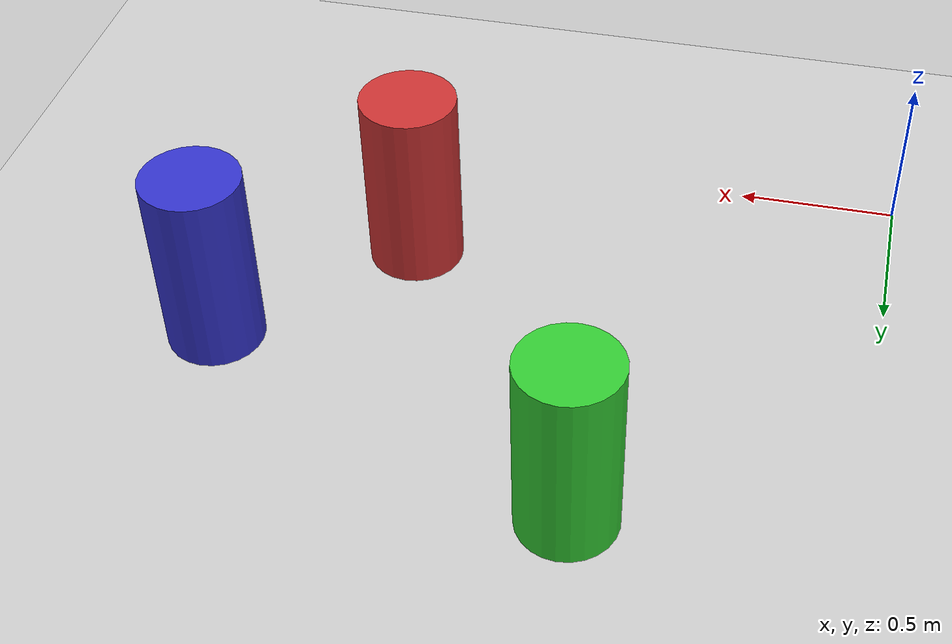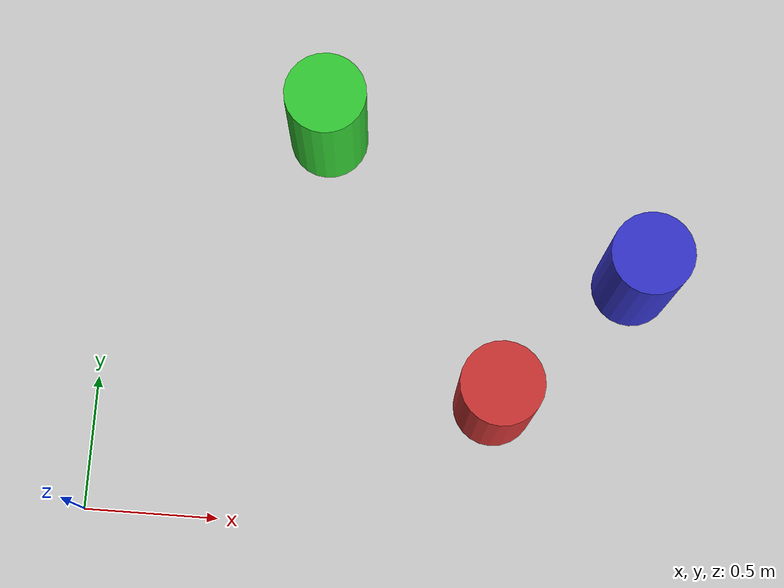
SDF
<?xml version="1.0" ?>
<sdf version="1.9">
  <world name="empty_world">
    <physics name="1ms" type="ignored">
      <max_step_size>0.001</max_step_size>
      <real_time_factor>1.0</real_time_factor>
    </physics>

    <plugin filename="gz-sim-physics-system" name="gz::sim::systems::Physics"></plugin>
    <plugin filename="gz-sim-user-commands-system" name="gz::sim::systems::UserCommands"></plugin>
    <plugin filename="gz-sim-scene-broadcaster-system" name="gz::sim::systems::SceneBroadcaster"></plugin>
    <plugin filename="gz-sim-sensors-system" name="gz::sim::systems::Sensors">
      <render_engine>ogre</render_engine>
    </plugin>

    <light type="directional" name="sun">
      <cast_shadows>true</cast_shadows>
      <pose>0 0 10 0 0 0</pose>
      <diffuse>0.8 0.8 0.8 1</diffuse>
      <specular>0.2 0.2 0.2 1</specular>
      <direction>-0.5 0.1 -0.9</direction>
    </light>

    <model name="ground_plane">
      <static>true</static>
      <link name="link">
        <collision name="collision">
          <geometry><plane><normal>0 0 1</normal><size>100 100</size></plane></geometry>
        </collision>
        <visual name="visual">
          <geometry><plane><normal>0 0 1</normal><size>100 100</size></plane></geometry>
          <material>
            <ambient>0.8 0.8 0.8 1</ambient>
            <diffuse>0.8 0.8 0.8 1</diffuse>
          </material>
        </visual>
      </link>
    </model>

    <!-- ========== STATIC CYLINDER OBSTACLES ========== -->
    <!-- obs_1: placed at (1.5, 0.5) — intercepts follower's straight+turn segment -->
    <model name="obs_1">
      <static>true</static>
      <pose>1.5 0.5 0.3 0 0 0</pose>
      <link name="link">
        <collision name="collision">
          <geometry>
            <cylinder><radius>0.15</radius><length>0.6</length></cylinder>
          </geometry>
        </collision>
        <visual name="visual">
          <geometry>
            <cylinder><radius>0.15</radius><length>0.6</length></cylinder>
          </geometry>
          <material>
            <ambient>0.8 0.2 0.2 1</ambient>
            <diffuse>0.8 0.2 0.2 1</diffuse>
          </material>
        </visual>
      </link>
    </model>

    <!-- obs_2: placed at (0.8, 1.5) — intercepts the loop segment -->
    <model name="obs_2">
      <static>true</static>
      <pose>0.8 1.5 0.3 0 0 0</pose>
      <link name="link">
        <collision name="collision">
          <geometry>
            <cylinder><radius>0.15</radius><length>0.6</length></cylinder>
          </geometry>
        </collision>
        <visual name="visual">
          <geometry>
            <cylinder><radius>0.15</radius><length>0.6</length></cylinder>
          </geometry>
          <material>
            <ambient>0.2 0.8 0.2 1</ambient>
            <diffuse>0.2 0.8 0.2 1</diffuse>
          </material>
        </visual>
      </link>
    </model>

    <!-- obs_3: placed at (2.0, 1.0) — intercepts the far side of the loop -->
    <model name="obs_3">
      <static>true</static>
      <pose>2.0 1.0 0.3 0 0 0</pose>
      <link name="link">
        <collision name="collision">
          <geometry>
            <cylinder><radius>0.15</radius><length>0.6</length></cylinder>
          </geometry>
        </collision>
        <visual name="visual">
          <geometry>
            <cylinder><radius>0.15</radius><length>0.6</length></cylinder>
          </geometry>
          <material>
            <ambient>0.2 0.2 0.8 1</ambient>
            <diffuse>0.2 0.2 0.8 1</diffuse>
          </material>
        </visual>
      </link>
    </model>

  </world>
</sdf>
